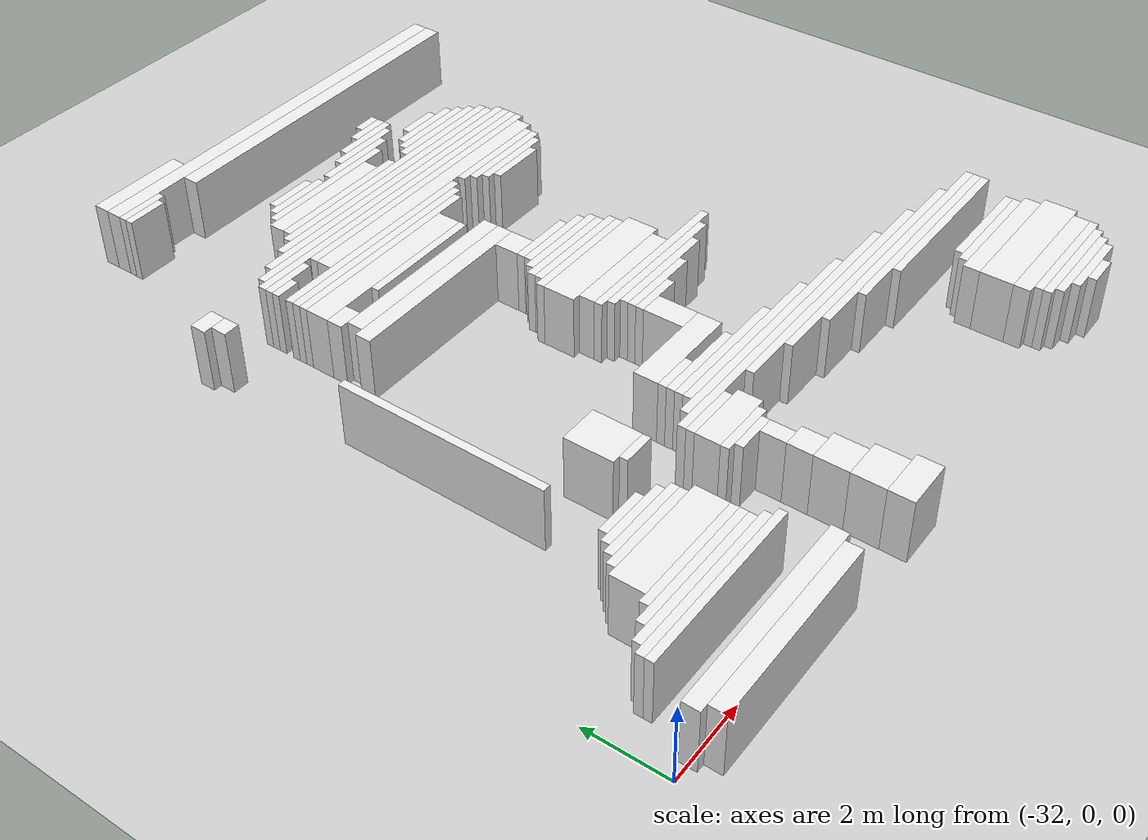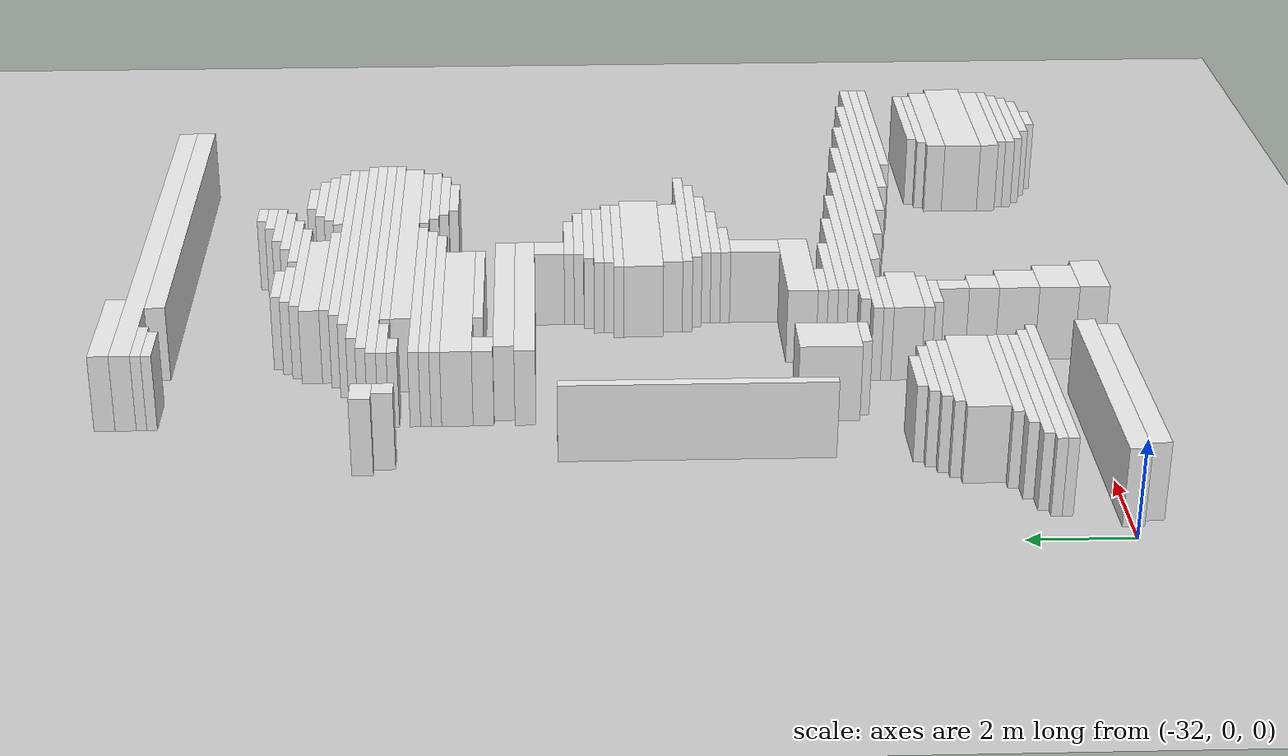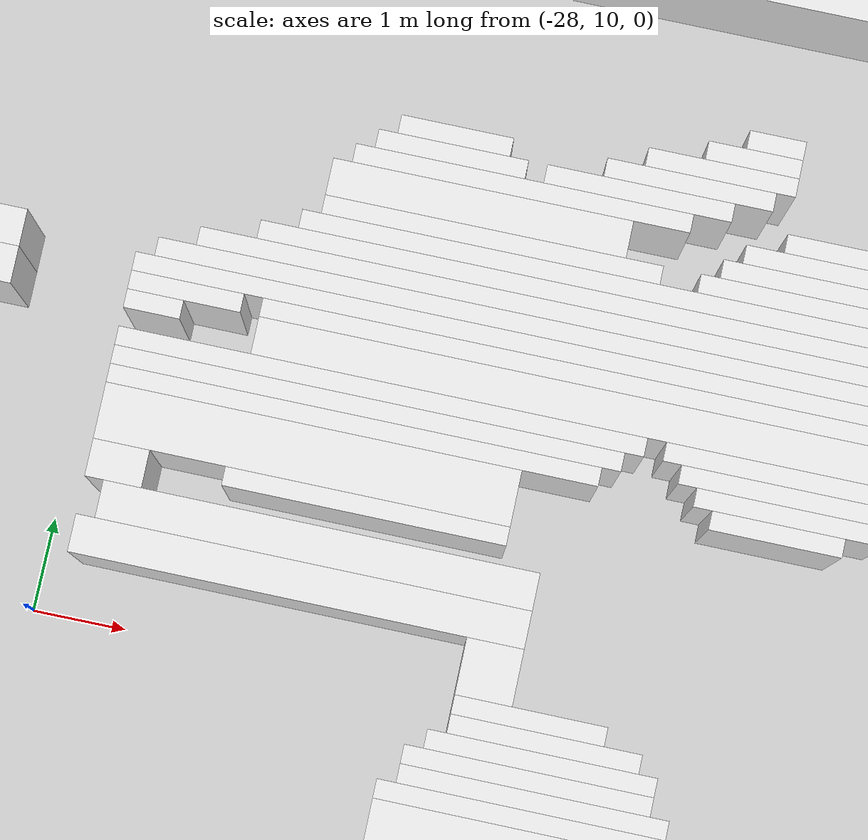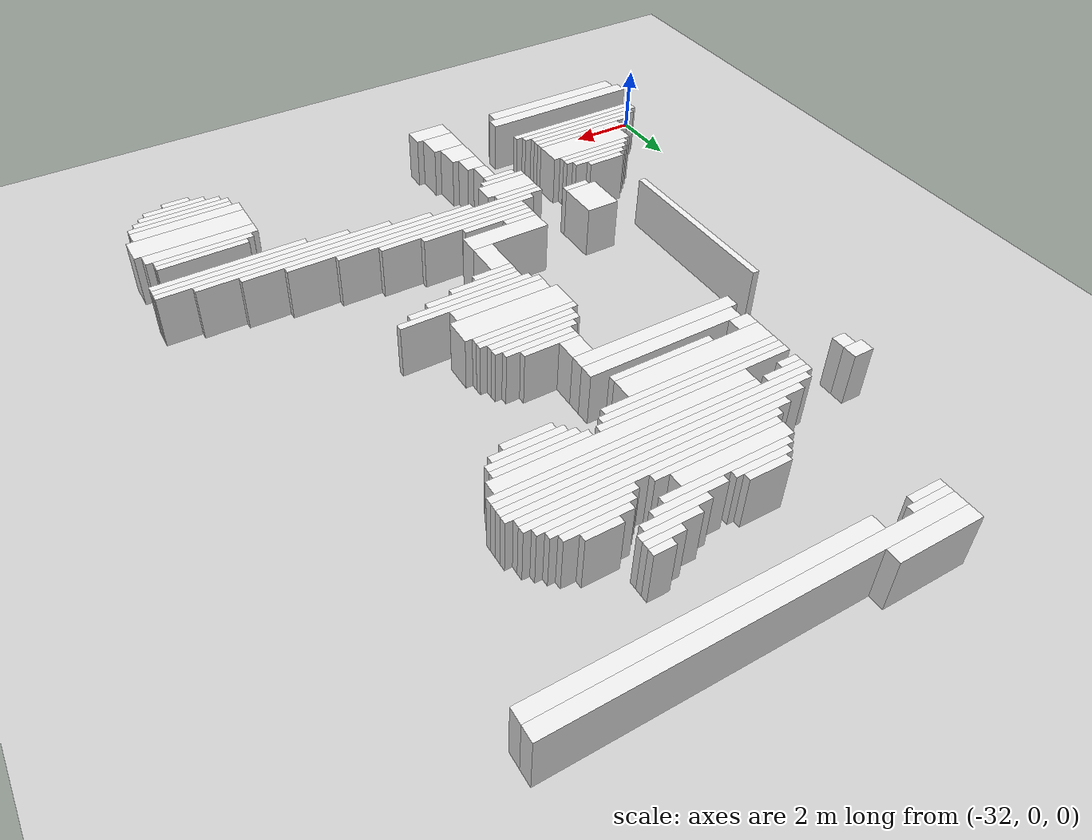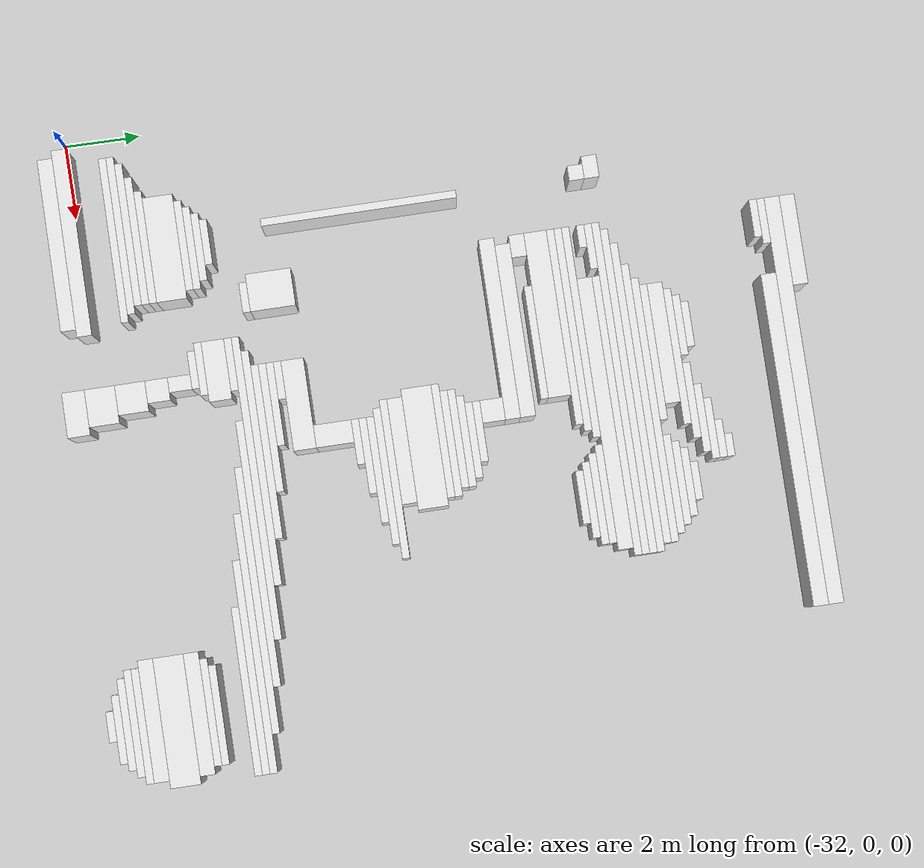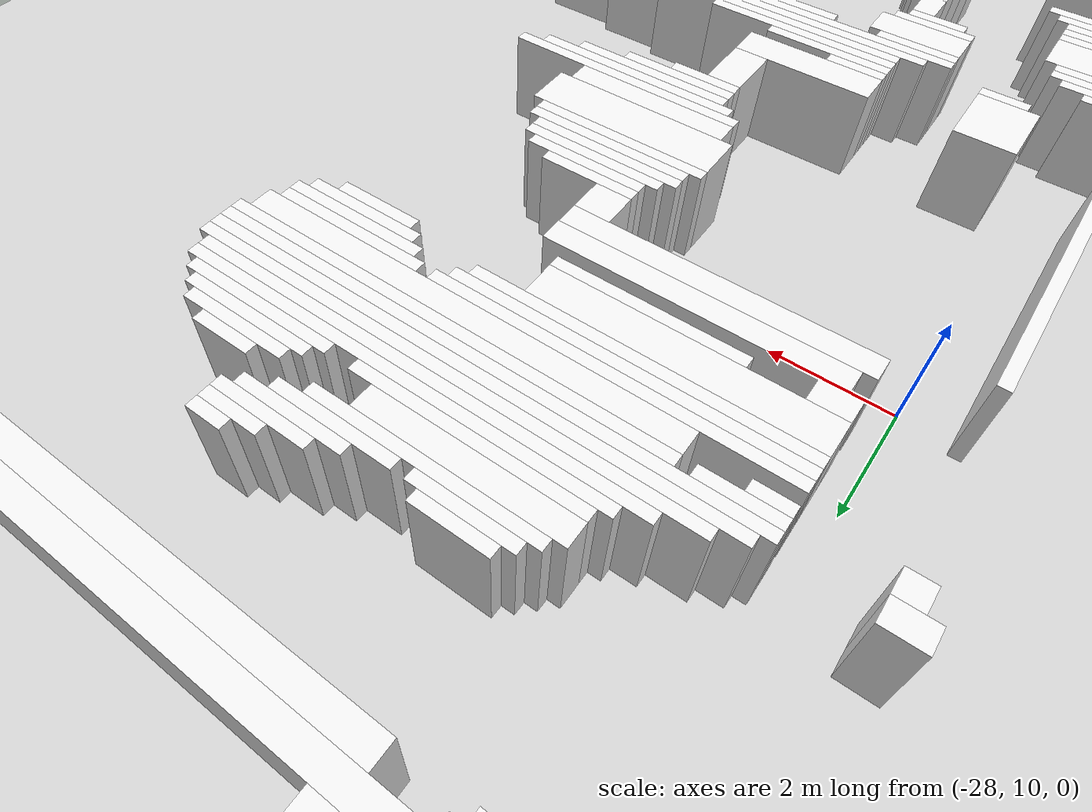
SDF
<sdf version="1.7">
 <world name="default">
  <model name="ground_plane">
   <static>1</static>
   <link name="link">
    <collision name="collision">
     <geometry><plane><normal>0 0 1</normal><size>120 120</size></plane></geometry>
    </collision>
    <visual name="visual">
     <geometry><plane><normal>0 0 1</normal><size>120 120</size></plane></geometry>
     <material>
      <script><uri>file://media/materials/scripts/gazebo.material</uri><name>Gazebo/Grey</name></script>
     </material>
    </visual>
   </link>
  </model>
  <model name="random_complex_01_model">
   <static>1</static>
   <link name="obs_1021">
    <pose>-26.4000 18.8000 0.8000 0 0 0</pose>
    <collision name="obs_1021_col"><geometry><box><size>2.4000 0.4000 1.6000</size></box></geometry></collision>
    <visual name="obs_1021_vis">
     <geometry><box><size>2.4000 0.4000 1.6000</size></box></geometry>
     <material>
      <script><uri>file://media/materials/scripts/gazebo.material</uri><name>Gazebo/White</name></script>
     </material>
    </visual>
   </link>
   <link name="obs_1034">
    <pose>-22.2000 18.4000 0.8000 0 0 0</pose>
    <collision name="obs_1034_col"><geometry><box><size>10.8000 0.4000 1.6000</size></box></geometry></collision>
    <visual name="obs_1034_vis">
     <geometry><box><size>10.8000 0.4000 1.6000</size></box></geometry>
     <material>
      <script><uri>file://media/materials/scripts/gazebo.material</uri><name>Gazebo/White</name></script>
     </material>
    </visual>
   </link>
   <link name="obs_1049">
    <pose>-27.0000 18.1000 0.8000 0 0 0</pose>
    <collision name="obs_1049_col"><geometry><box><size>1.2000 0.2000 1.6000</size></box></geometry></collision>
    <visual name="obs_1049_vis">
     <geometry><box><size>1.2000 0.2000 1.6000</size></box></geometry>
     <material>
      <script><uri>file://media/materials/scripts/gazebo.material</uri><name>Gazebo/White</name></script>
     </material>
    </visual>
   </link>
   <link name="obs_1056">
    <pose>-21.2000 18.0000 0.8000 0 0 0</pose>
    <collision name="obs_1056_col"><geometry><box><size>8.8000 0.4000 1.6000</size></box></geometry></collision>
    <visual name="obs_1056_vis">
     <geometry><box><size>8.8000 0.4000 1.6000</size></box></geometry>
     <material>
      <script><uri>file://media/materials/scripts/gazebo.material</uri><name>Gazebo/White</name></script>
     </material>
    </visual>
   </link>
   <link name="obs_1062">
    <pose>-27.1000 17.9000 0.8000 0 0 0</pose>
    <collision name="obs_1062_col"><geometry><box><size>1.0000 0.2000 1.6000</size></box></geometry></collision>
    <visual name="obs_1062_vis">
     <geometry><box><size>1.0000 0.2000 1.6000</size></box></geometry>
     <material>
      <script><uri>file://media/materials/scripts/gazebo.material</uri><name>Gazebo/White</name></script>
     </material>
    </visual>
   </link>
   <link name="obs_1123">
    <pose>-21.3000 16.3000 0.8000 0 0 0</pose>
    <collision name="obs_1123_col"><geometry><box><size>0.6000 0.2000 1.6000</size></box></geometry></collision>
    <visual name="obs_1123_vis">
     <geometry><box><size>0.6000 0.2000 1.6000</size></box></geometry>
     <material>
      <script><uri>file://media/materials/scripts/gazebo.material</uri><name>Gazebo/White</name></script>
     </material>
    </visual>
   </link>
   <link name="obs_1133">
    <pose>-21.5000 16.1000 0.8000 0 0 0</pose>
    <collision name="obs_1133_col"><geometry><box><size>1.0000 0.2000 1.6000</size></box></geometry></collision>
    <visual name="obs_1133_vis">
     <geometry><box><size>1.0000 0.2000 1.6000</size></box></geometry>
     <material>
      <script><uri>file://media/materials/scripts/gazebo.material</uri><name>Gazebo/White</name></script>
     </material>
    </visual>
   </link>
   <link name="obs_1143">
    <pose>-21.8000 15.9000 0.8000 0 0 0</pose>
    <collision name="obs_1143_col"><geometry><box><size>1.6000 0.2000 1.6000</size></box></geometry></collision>
    <visual name="obs_1143_vis">
     <geometry><box><size>1.6000 0.2000 1.6000</size></box></geometry>
     <material>
      <script><uri>file://media/materials/scripts/gazebo.material</uri><name>Gazebo/White</name></script>
     </material>
    </visual>
   </link>
   <link name="obs_1151">
    <pose>-24.6000 15.7000 0.8000 0 0 0</pose>
    <collision name="obs_1151_col"><geometry><box><size>1.2000 0.2000 1.6000</size></box></geometry></collision>
    <visual name="obs_1151_vis">
     <geometry><box><size>1.2000 0.2000 1.6000</size></box></geometry>
     <material>
      <script><uri>file://media/materials/scripts/gazebo.material</uri><name>Gazebo/White</name></script>
     </material>
    </visual>
   </link>
   <link name="obs_1152">
    <pose>-22.1000 15.7000 0.8000 0 0 0</pose>
    <collision name="obs_1152_col"><geometry><box><size>1.8000 0.2000 1.6000</size></box></geometry></collision>
    <visual name="obs_1152_vis">
     <geometry><box><size>1.8000 0.2000 1.6000</size></box></geometry>
     <material>
      <script><uri>file://media/materials/scripts/gazebo.material</uri><name>Gazebo/White</name></script>
     </material>
    </visual>
   </link>
   <link name="obs_1159">
    <pose>-24.6000 15.5000 0.8000 0 0 0</pose>
    <collision name="obs_1159_col"><geometry><box><size>1.6000 0.2000 1.6000</size></box></geometry></collision>
    <visual name="obs_1159_vis">
     <geometry><box><size>1.6000 0.2000 1.6000</size></box></geometry>
     <material>
      <script><uri>file://media/materials/scripts/gazebo.material</uri><name>Gazebo/White</name></script>
     </material>
    </visual>
   </link>
   <link name="obs_1160">
    <pose>-22.6000 15.5000 0.8000 0 0 0</pose>
    <collision name="obs_1160_col"><geometry><box><size>2.0000 0.2000 1.6000</size></box></geometry></collision>
    <visual name="obs_1160_vis">
     <geometry><box><size>2.0000 0.2000 1.6000</size></box></geometry>
     <material>
      <script><uri>file://media/materials/scripts/gazebo.material</uri><name>Gazebo/White</name></script>
     </material>
    </visual>
   </link>
   <link name="obs_1170">
    <pose>-23.8000 15.3000 0.8000 0 0 0</pose>
    <collision name="obs_1170_col"><geometry><box><size>3.6000 0.2000 1.6000</size></box></geometry></collision>
    <visual name="obs_1170_vis">
     <geometry><box><size>3.6000 0.2000 1.6000</size></box></geometry>
     <material>
      <script><uri>file://media/materials/scripts/gazebo.material</uri><name>Gazebo/White</name></script>
     </material>
    </visual>
   </link>
   <link name="obs_1171">
    <pose>-20.5000 15.3000 0.8000 0 0 0</pose>
    <collision name="obs_1171_col"><geometry><box><size>1.0000 0.2000 1.6000</size></box></geometry></collision>
    <visual name="obs_1171_vis">
     <geometry><box><size>1.0000 0.2000 1.6000</size></box></geometry>
     <material>
      <script><uri>file://media/materials/scripts/gazebo.material</uri><name>Gazebo/White</name></script>
     </material>
    </visual>
   </link>
   <link name="obs_1178">
    <pose>-20.5000 15.1000 0.8000 0 0 0</pose>
    <collision name="obs_1178_col"><geometry><box><size>1.8000 0.2000 1.6000</size></box></geometry></collision>
    <visual name="obs_1178_vis">
     <geometry><box><size>1.8000 0.2000 1.6000</size></box></geometry>
     <material>
      <script><uri>file://media/materials/scripts/gazebo.material</uri><name>Gazebo/White</name></script>
     </material>
    </visual>
   </link>
   <link name="obs_1183">
    <pose>-24.2000 15.0000 0.8000 0 0 0</pose>
    <collision name="obs_1183_col"><geometry><box><size>3.2000 0.4000 1.6000</size></box></geometry></collision>
    <visual name="obs_1183_vis">
     <geometry><box><size>3.2000 0.4000 1.6000</size></box></geometry>
     <material>
      <script><uri>file://media/materials/scripts/gazebo.material</uri><name>Gazebo/White</name></script>
     </material>
    </visual>
   </link>
   <link name="obs_1186">
    <pose>-20.5000 14.9000 0.8000 0 0 0</pose>
    <collision name="obs_1186_col"><geometry><box><size>2.2000 0.2000 1.6000</size></box></geometry></collision>
    <visual name="obs_1186_vis">
     <geometry><box><size>2.2000 0.2000 1.6000</size></box></geometry>
     <material>
      <script><uri>file://media/materials/scripts/gazebo.material</uri><name>Gazebo/White</name></script>
     </material>
    </visual>
   </link>
   <link name="obs_1192">
    <pose>-24.0000 14.7000 0.8000 0 0 0</pose>
    <collision name="obs_1192_col"><geometry><box><size>3.6000 0.2000 1.6000</size></box></geometry></collision>
    <visual name="obs_1192_vis">
     <geometry><box><size>3.6000 0.2000 1.6000</size></box></geometry>
     <material>
      <script><uri>file://media/materials/scripts/gazebo.material</uri><name>Gazebo/White</name></script>
     </material>
    </visual>
   </link>
   <link name="obs_1193">
    <pose>-20.5000 14.7000 0.8000 0 0 0</pose>
    <collision name="obs_1193_col"><geometry><box><size>2.6000 0.2000 1.6000</size></box></geometry></collision>
    <visual name="obs_1193_vis">
     <geometry><box><size>2.6000 0.2000 1.6000</size></box></geometry>
     <material>
      <script><uri>file://media/materials/scripts/gazebo.material</uri><name>Gazebo/White</name></script>
     </material>
    </visual>
   </link>
   <link name="obs_1201">
    <pose>-22.5000 14.5000 0.8000 0 0 0</pose>
    <collision name="obs_1201_col"><geometry><box><size>7.0000 0.2000 1.6000</size></box></geometry></collision>
    <visual name="obs_1201_vis">
     <geometry><box><size>7.0000 0.2000 1.6000</size></box></geometry>
     <material>
      <script><uri>file://media/materials/scripts/gazebo.material</uri><name>Gazebo/White</name></script>
     </material>
    </visual>
   </link>
   <link name="obs_1208">
    <pose>-22.7000 14.3000 0.8000 0 0 0</pose>
    <collision name="obs_1208_col"><geometry><box><size>7.4000 0.2000 1.6000</size></box></geometry></collision>
    <visual name="obs_1208_vis">
     <geometry><box><size>7.4000 0.2000 1.6000</size></box></geometry>
     <material>
      <script><uri>file://media/materials/scripts/gazebo.material</uri><name>Gazebo/White</name></script>
     </material>
    </visual>
   </link>
   <link name="obs_1216">
    <pose>-22.9000 14.1000 0.8000 0 0 0</pose>
    <collision name="obs_1216_col"><geometry><box><size>8.2000 0.2000 1.6000</size></box></geometry></collision>
    <visual name="obs_1216_vis">
     <geometry><box><size>8.2000 0.2000 1.6000</size></box></geometry>
     <material>
      <script><uri>file://media/materials/scripts/gazebo.material</uri><name>Gazebo/White</name></script>
     </material>
    </visual>
   </link>
   <link name="obs_1222">
    <pose>-23.1000 13.9000 0.8000 0 0 0</pose>
    <collision name="obs_1222_col"><geometry><box><size>8.6000 0.2000 1.6000</size></box></geometry></collision>
    <visual name="obs_1222_vis">
     <geometry><box><size>8.6000 0.2000 1.6000</size></box></geometry>
     <material>
      <script><uri>file://media/materials/scripts/gazebo.material</uri><name>Gazebo/White</name></script>
     </material>
    </visual>
   </link>
   <link name="obs_1228">
    <pose>-29.1000 13.8000 0.8000 0 0 0</pose>
    <collision name="obs_1228_col"><geometry><box><size>0.6000 0.4000 1.6000</size></box></geometry></collision>
    <visual name="obs_1228_vis">
     <geometry><box><size>0.6000 0.4000 1.6000</size></box></geometry>
     <material>
      <script><uri>file://media/materials/scripts/gazebo.material</uri><name>Gazebo/White</name></script>
     </material>
    </visual>
   </link>
   <link name="obs_1229">
    <pose>-23.2000 13.7000 0.8000 0 0 0</pose>
    <collision name="obs_1229_col"><geometry><box><size>8.8000 0.2000 1.6000</size></box></geometry></collision>
    <visual name="obs_1229_vis">
     <geometry><box><size>8.8000 0.2000 1.6000</size></box></geometry>
     <material>
      <script><uri>file://media/materials/scripts/gazebo.material</uri><name>Gazebo/White</name></script>
     </material>
    </visual>
   </link>
   <link name="obs_1238">
    <pose>-27.0000 13.5000 0.8000 0 0 0</pose>
    <collision name="obs_1238_col"><geometry><box><size>1.2000 0.2000 1.6000</size></box></geometry></collision>
    <visual name="obs_1238_vis">
     <geometry><box><size>1.2000 0.2000 1.6000</size></box></geometry>
     <material>
      <script><uri>file://media/materials/scripts/gazebo.material</uri><name>Gazebo/White</name></script>
     </material>
    </visual>
   </link>
   <link name="obs_1239">
    <pose>-22.5000 13.5000 0.8000 0 0 0</pose>
    <collision name="obs_1239_col"><geometry><box><size>7.4000 0.2000 1.6000</size></box></geometry></collision>
    <visual name="obs_1239_vis">
     <geometry><box><size>7.4000 0.2000 1.6000</size></box></geometry>
     <material>
      <script><uri>file://media/materials/scripts/gazebo.material</uri><name>Gazebo/White</name></script>
     </material>
    </visual>
   </link>
   <link name="obs_1249">
    <pose>-29.0000 13.4000 0.8000 0 0 0</pose>
    <collision name="obs_1249_col"><geometry><box><size>0.4000 0.4000 1.6000</size></box></geometry></collision>
    <visual name="obs_1249_vis">
     <geometry><box><size>0.4000 0.4000 1.6000</size></box></geometry>
     <material>
      <script><uri>file://media/materials/scripts/gazebo.material</uri><name>Gazebo/White</name></script>
     </material>
    </visual>
   </link>
   <link name="obs_1251">
    <pose>-27.3000 13.3000 0.8000 0 0 0</pose>
    <collision name="obs_1251_col"><geometry><box><size>0.6000 0.2000 1.6000</size></box></geometry></collision>
    <visual name="obs_1251_vis">
     <geometry><box><size>0.6000 0.2000 1.6000</size></box></geometry>
     <material>
      <script><uri>file://media/materials/scripts/gazebo.material</uri><name>Gazebo/White</name></script>
     </material>
    </visual>
   </link>
   <link name="obs_1257">
    <pose>-22.6000 13.2000 0.8000 0 0 0</pose>
    <collision name="obs_1257_col"><geometry><box><size>7.2000 0.4000 1.6000</size></box></geometry></collision>
    <visual name="obs_1257_vis">
     <geometry><box><size>7.2000 0.4000 1.6000</size></box></geometry>
     <material>
      <script><uri>file://media/materials/scripts/gazebo.material</uri><name>Gazebo/White</name></script>
     </material>
    </visual>
   </link>
   <link name="obs_1265">
    <pose>-24.8000 12.9000 0.8000 0 0 0</pose>
    <collision name="obs_1265_col"><geometry><box><size>5.6000 0.2000 1.6000</size></box></geometry></collision>
    <visual name="obs_1265_vis">
     <geometry><box><size>5.6000 0.2000 1.6000</size></box></geometry>
     <material>
      <script><uri>file://media/materials/scripts/gazebo.material</uri><name>Gazebo/White</name></script>
     </material>
    </visual>
   </link>
   <link name="obs_1266">
    <pose>-20.5000 12.9000 0.8000 0 0 0</pose>
    <collision name="obs_1266_col"><geometry><box><size>2.6000 0.2000 1.6000</size></box></geometry></collision>
    <visual name="obs_1266_vis">
     <geometry><box><size>2.6000 0.2000 1.6000</size></box></geometry>
     <material>
      <script><uri>file://media/materials/scripts/gazebo.material</uri><name>Gazebo/White</name></script>
     </material>
    </visual>
   </link>
   <link name="obs_1274">
    <pose>-24.9000 12.7000 0.8000 0 0 0</pose>
    <collision name="obs_1274_col"><geometry><box><size>5.4000 0.2000 1.6000</size></box></geometry></collision>
    <visual name="obs_1274_vis">
     <geometry><box><size>5.4000 0.2000 1.6000</size></box></geometry>
     <material>
      <script><uri>file://media/materials/scripts/gazebo.material</uri><name>Gazebo/White</name></script>
     </material>
    </visual>
   </link>
   <link name="obs_1275">
    <pose>-20.4000 12.7000 0.8000 0 0 0</pose>
    <collision name="obs_1275_col"><geometry><box><size>2.4000 0.2000 1.6000</size></box></geometry></collision>
    <visual name="obs_1275_vis">
     <geometry><box><size>2.4000 0.2000 1.6000</size></box></geometry>
     <material>
      <script><uri>file://media/materials/scripts/gazebo.material</uri><name>Gazebo/White</name></script>
     </material>
    </visual>
   </link>
   <link name="obs_1285">
    <pose>-25.0000 12.5000 0.8000 0 0 0</pose>
    <collision name="obs_1285_col"><geometry><box><size>5.2000 0.2000 1.6000</size></box></geometry></collision>
    <visual name="obs_1285_vis">
     <geometry><box><size>5.2000 0.2000 1.6000</size></box></geometry>
     <material>
      <script><uri>file://media/materials/scripts/gazebo.material</uri><name>Gazebo/White</name></script>
     </material>
    </visual>
   </link>
   <link name="obs_1286">
    <pose>-20.4000 12.5000 0.8000 0 0 0</pose>
    <collision name="obs_1286_col"><geometry><box><size>2.0000 0.2000 1.6000</size></box></geometry></collision>
    <visual name="obs_1286_vis">
     <geometry><box><size>2.0000 0.2000 1.6000</size></box></geometry>
     <material>
      <script><uri>file://media/materials/scripts/gazebo.material</uri><name>Gazebo/White</name></script>
     </material>
    </visual>
   </link>
   <link name="obs_1292">
    <pose>-20.5000 12.3000 0.8000 0 0 0</pose>
    <collision name="obs_1292_col"><geometry><box><size>1.4000 0.2000 1.6000</size></box></geometry></collision>
    <visual name="obs_1292_vis">
     <geometry><box><size>1.4000 0.2000 1.6000</size></box></geometry>
     <material>
      <script><uri>file://media/materials/scripts/gazebo.material</uri><name>Gazebo/White</name></script>
     </material>
    </visual>
   </link>
   <link name="obs_1306">
    <pose>-25.4000 12.1000 0.8000 0 0 0</pose>
    <collision name="obs_1306_col"><geometry><box><size>4.4000 0.6000 1.6000</size></box></geometry></collision>
    <visual name="obs_1306_vis">
     <geometry><box><size>4.4000 0.6000 1.6000</size></box></geometry>
     <material>
      <script><uri>file://media/materials/scripts/gazebo.material</uri><name>Gazebo/White</name></script>
     </material>
    </visual>
   </link>
   <link name="obs_1317">
    <pose>-24.7000 11.7000 0.8000 0 0 0</pose>
    <collision name="obs_1317_col"><geometry><box><size>3.0000 0.2000 1.6000</size></box></geometry></collision>
    <visual name="obs_1317_vis">
     <geometry><box><size>3.0000 0.2000 1.6000</size></box></geometry>
     <material>
      <script><uri>file://media/materials/scripts/gazebo.material</uri><name>Gazebo/White</name></script>
     </material>
    </visual>
   </link>
   <link name="obs_1322">
    <pose>-27.3000 11.6000 0.8000 0 0 0</pose>
    <collision name="obs_1322_col"><geometry><box><size>0.6000 0.4000 1.6000</size></box></geometry></collision>
    <visual name="obs_1322_vis">
     <geometry><box><size>0.6000 0.4000 1.6000</size></box></geometry>
     <material>
      <script><uri>file://media/materials/scripts/gazebo.material</uri><name>Gazebo/White</name></script>
     </material>
    </visual>
   </link>
   <link name="obs_1334">
    <pose>-25.1000 11.2000 0.8000 0 0 0</pose>
    <collision name="obs_1334_col"><geometry><box><size>4.6000 0.4000 1.6000</size></box></geometry></collision>
    <visual name="obs_1334_vis">
     <geometry><box><size>4.6000 0.4000 1.6000</size></box></geometry>
     <material>
      <script><uri>file://media/materials/scripts/gazebo.material</uri><name>Gazebo/White</name></script>
     </material>
    </visual>
   </link>
   <link name="obs_1346">
    <pose>-25.2000 10.8000 0.8000 0 0 0</pose>
    <collision name="obs_1346_col"><geometry><box><size>4.8000 0.4000 1.6000</size></box></geometry></collision>
    <visual name="obs_1346_vis">
     <geometry><box><size>4.8000 0.4000 1.6000</size></box></geometry>
     <material>
      <script><uri>file://media/materials/scripts/gazebo.material</uri><name>Gazebo/White</name></script>
     </material>
    </visual>
   </link>
   <link name="obs_1364">
    <pose>-23.1000 10.3000 0.8000 0 0 0</pose>
    <collision name="obs_1364_col"><geometry><box><size>0.6000 0.6000 1.6000</size></box></geometry></collision>
    <visual name="obs_1364_vis">
     <geometry><box><size>0.6000 0.6000 1.6000</size></box></geometry>
     <material>
      <script><uri>file://media/materials/scripts/gazebo.material</uri><name>Gazebo/White</name></script>
     </material>
    </visual>
   </link>
   <link name="obs_1374">
    <pose>-22.6000 9.9000 0.8000 0 0 0</pose>
    <collision name="obs_1374_col"><geometry><box><size>1.6000 0.2000 1.6000</size></box></geometry></collision>
    <visual name="obs_1374_vis">
     <geometry><box><size>1.6000 0.2000 1.6000</size></box></geometry>
     <material>
      <script><uri>file://media/materials/scripts/gazebo.material</uri><name>Gazebo/White</name></script>
     </material>
    </visual>
   </link>
   <link name="obs_1381">
    <pose>-22.4000 9.7000 0.8000 0 0 0</pose>
    <collision name="obs_1381_col"><geometry><box><size>2.0000 0.2000 1.6000</size></box></geometry></collision>
    <visual name="obs_1381_vis">
     <geometry><box><size>2.0000 0.2000 1.6000</size></box></geometry>
     <material>
      <script><uri>file://media/materials/scripts/gazebo.material</uri><name>Gazebo/White</name></script>
     </material>
    </visual>
   </link>
   <link name="obs_1391">
    <pose>-22.4000 9.5000 0.8000 0 0 0</pose>
    <collision name="obs_1391_col"><geometry><box><size>2.4000 0.2000 1.6000</size></box></geometry></collision>
    <visual name="obs_1391_vis">
     <geometry><box><size>2.4000 0.2000 1.6000</size></box></geometry>
     <material>
      <script><uri>file://media/materials/scripts/gazebo.material</uri><name>Gazebo/White</name></script>
     </material>
    </visual>
   </link>
   <link name="obs_1396">
    <pose>-22.5000 9.3000 0.8000 0 0 0</pose>
    <collision name="obs_1396_col"><geometry><box><size>2.6000 0.2000 1.6000</size></box></geometry></collision>
    <visual name="obs_1396_vis">
     <geometry><box><size>2.6000 0.2000 1.6000</size></box></geometry>
     <material>
      <script><uri>file://media/materials/scripts/gazebo.material</uri><name>Gazebo/White</name></script>
     </material>
    </visual>
   </link>
   <link name="obs_1404">
    <pose>-22.4000 9.1000 0.8000 0 0 0</pose>
    <collision name="obs_1404_col"><geometry><box><size>2.8000 0.2000 1.6000</size></box></geometry></collision>
    <visual name="obs_1404_vis">
     <geometry><box><size>2.8000 0.2000 1.6000</size></box></geometry>
     <material>
      <script><uri>file://media/materials/scripts/gazebo.material</uri><name>Gazebo/White</name></script>
     </material>
    </visual>
   </link>
   <link name="obs_1415">
    <pose>-22.5000 8.9000 0.8000 0 0 0</pose>
    <collision name="obs_1415_col"><geometry><box><size>3.0000 0.2000 1.6000</size></box></geometry></collision>
    <visual name="obs_1415_vis">
     <geometry><box><size>3.0000 0.2000 1.6000</size></box></geometry>
     <material>
      <script><uri>file://media/materials/scripts/gazebo.material</uri><name>Gazebo/White</name></script>
     </material>
    </visual>
   </link>
   <link name="obs_1443">
    <pose>-22.4000 8.4000 0.8000 0 0 0</pose>
    <collision name="obs_1443_col"><geometry><box><size>3.2000 0.8000 1.6000</size></box></geometry></collision>
    <visual name="obs_1443_vis">
     <geometry><box><size>3.2000 0.8000 1.6000</size></box></geometry>
     <material>
      <script><uri>file://media/materials/scripts/gazebo.material</uri><name>Gazebo/White</name></script>
     </material>
    </visual>
   </link>
   <link name="obs_1459">
    <pose>-22.4000 7.8000 0.8000 0 0 0</pose>
    <collision name="obs_1459_col"><geometry><box><size>2.8000 0.4000 1.6000</size></box></geometry></collision>
    <visual name="obs_1459_vis">
     <geometry><box><size>2.8000 0.4000 1.6000</size></box></geometry>
     <material>
      <script><uri>file://media/materials/scripts/gazebo.material</uri><name>Gazebo/White</name></script>
     </material>
    </visual>
   </link>
   <link name="obs_1471">
    <pose>-21.7000 7.5000 0.8000 0 0 0</pose>
    <collision name="obs_1471_col"><geometry><box><size>4.2000 0.2000 1.6000</size></box></geometry></collision>
    <visual name="obs_1471_vis">
     <geometry><box><size>4.2000 0.2000 1.6000</size></box></geometry>
     <material>
      <script><uri>file://media/materials/scripts/gazebo.material</uri><name>Gazebo/White</name></script>
     </material>
    </visual>
   </link>
   <link name="obs_1481">
    <pose>-21.8000 7.3000 0.8000 0 0 0</pose>
    <collision name="obs_1481_col"><geometry><box><size>3.6000 0.2000 1.6000</size></box></geometry></collision>
    <visual name="obs_1481_vis">
     <geometry><box><size>3.6000 0.2000 1.6000</size></box></geometry>
     <material>
      <script><uri>file://media/materials/scripts/gazebo.material</uri><name>Gazebo/White</name></script>
     </material>
    </visual>
   </link>
   <link name="obs_1487">
    <pose>-22.0000 7.1000 0.8000 0 0 0</pose>
    <collision name="obs_1487_col"><geometry><box><size>2.8000 0.2000 1.6000</size></box></geometry></collision>
    <visual name="obs_1487_vis">
     <geometry><box><size>2.8000 0.2000 1.6000</size></box></geometry>
     <material>
      <script><uri>file://media/materials/scripts/gazebo.material</uri><name>Gazebo/White</name></script>
     </material>
    </visual>
   </link>
   <link name="obs_1495">
    <pose>-22.4000 6.9000 0.8000 0 0 0</pose>
    <collision name="obs_1495_col"><geometry><box><size>2.0000 0.2000 1.6000</size></box></geometry></collision>
    <visual name="obs_1495_vis">
     <geometry><box><size>2.0000 0.2000 1.6000</size></box></geometry>
     <material>
      <script><uri>file://media/materials/scripts/gazebo.material</uri><name>Gazebo/White</name></script>
     </material>
    </visual>
   </link>
   <link name="obs_1501">
    <pose>-22.8000 6.7000 0.8000 0 0 0</pose>
    <collision name="obs_1501_col"><geometry><box><size>1.2000 0.2000 1.6000</size></box></geometry></collision>
    <visual name="obs_1501_vis">
     <geometry><box><size>1.2000 0.2000 1.6000</size></box></geometry>
     <material>
      <script><uri>file://media/materials/scripts/gazebo.material</uri><name>Gazebo/White</name></script>
     </material>
    </visual>
   </link>
   <link name="obs_1542">
    <pose>-23.1000 6.1000 0.8000 0 0 0</pose>
    <collision name="obs_1542_col"><geometry><box><size>0.6000 1.0000 1.6000</size></box></geometry></collision>
    <visual name="obs_1542_vis">
     <geometry><box><size>0.6000 1.0000 1.6000</size></box></geometry>
     <material>
      <script><uri>file://media/materials/scripts/gazebo.material</uri><name>Gazebo/White</name></script>
     </material>
    </visual>
   </link>
   <link name="obs_1569">
    <pose>-28.9000 7.6000 0.8000 0 0 0</pose>
    <collision name="obs_1569_col"><geometry><box><size>0.2000 5.2000 1.6000</size></box></geometry></collision>
    <visual name="obs_1569_vis">
     <geometry><box><size>0.2000 5.2000 1.6000</size></box></geometry>
     <material>
      <script><uri>file://media/materials/scripts/gazebo.material</uri><name>Gazebo/White</name></script>
     </material>
    </visual>
   </link>
   <link name="obs_1570">
    <pose>-24.0000 5.3000 0.8000 0 0 0</pose>
    <collision name="obs_1570_col"><geometry><box><size>2.4000 0.6000 1.6000</size></box></geometry></collision>
    <visual name="obs_1570_vis">
     <geometry><box><size>2.4000 0.6000 1.6000</size></box></geometry>
     <material>
      <script><uri>file://media/materials/scripts/gazebo.material</uri><name>Gazebo/White</name></script>
     </material>
    </visual>
   </link>
   <link name="obs_1584">
    <pose>-24.7000 4.9000 0.8000 0 0 0</pose>
    <collision name="obs_1584_col"><geometry><box><size>1.0000 0.2000 1.6000</size></box></geometry></collision>
    <visual name="obs_1584_vis">
     <geometry><box><size>1.0000 0.2000 1.6000</size></box></geometry>
     <material>
      <script><uri>file://media/materials/scripts/gazebo.material</uri><name>Gazebo/White</name></script>
     </material>
    </visual>
   </link>
   <link name="obs_1594">
    <pose>-24.1000 4.7000 0.8000 0 0 0</pose>
    <collision name="obs_1594_col"><geometry><box><size>2.2000 0.2000 1.6000</size></box></geometry></collision>
    <visual name="obs_1594_vis">
     <geometry><box><size>2.2000 0.2000 1.6000</size></box></geometry>
     <material>
      <script><uri>file://media/materials/scripts/gazebo.material</uri><name>Gazebo/White</name></script>
     </material>
    </visual>
   </link>
   <link name="obs_1601">
    <pose>-27.1000 5.0000 0.8000 0 0 0</pose>
    <collision name="obs_1601_col"><geometry><box><size>1.0000 1.2000 1.6000</size></box></geometry></collision>
    <visual name="obs_1601_vis">
     <geometry><box><size>1.0000 1.2000 1.6000</size></box></geometry>
     <material>
      <script><uri>file://media/materials/scripts/gazebo.material</uri><name>Gazebo/White</name></script>
     </material>
    </visual>
   </link>
   <link name="obs_1605">
    <pose>-23.5000 4.5000 0.8000 0 0 0</pose>
    <collision name="obs_1605_col"><geometry><box><size>3.4000 0.2000 1.6000</size></box></geometry></collision>
    <visual name="obs_1605_vis">
     <geometry><box><size>3.4000 0.2000 1.6000</size></box></geometry>
     <material>
      <script><uri>file://media/materials/scripts/gazebo.material</uri><name>Gazebo/White</name></script>
     </material>
    </visual>
   </link>
   <link name="obs_1614">
    <pose>-27.0000 4.3000 0.8000 0 0 0</pose>
    <collision name="obs_1614_col"><geometry><box><size>0.8000 0.2000 1.6000</size></box></geometry></collision>
    <visual name="obs_1614_vis">
     <geometry><box><size>0.8000 0.2000 1.6000</size></box></geometry>
     <material>
      <script><uri>file://media/materials/scripts/gazebo.material</uri><name>Gazebo/White</name></script>
     </material>
    </visual>
   </link>
   <link name="obs_1615">
    <pose>-22.9000 4.3000 0.8000 0 0 0</pose>
    <collision name="obs_1615_col"><geometry><box><size>4.6000 0.2000 1.6000</size></box></geometry></collision>
    <visual name="obs_1615_vis">
     <geometry><box><size>4.6000 0.2000 1.6000</size></box></geometry>
     <material>
      <script><uri>file://media/materials/scripts/gazebo.material</uri><name>Gazebo/White</name></script>
     </material>
    </visual>
   </link>
   <link name="obs_1623">
    <pose>-22.5000 4.1000 0.8000 0 0 0</pose>
    <collision name="obs_1623_col"><geometry><box><size>6.2000 0.2000 1.6000</size></box></geometry></collision>
    <visual name="obs_1623_vis">
     <geometry><box><size>6.2000 0.2000 1.6000</size></box></geometry>
     <material>
      <script><uri>file://media/materials/scripts/gazebo.material</uri><name>Gazebo/White</name></script>
     </material>
    </visual>
   </link>
   <link name="obs_1638">
    <pose>-22.0000 3.9000 0.8000 0 0 0</pose>
    <collision name="obs_1638_col"><geometry><box><size>8.0000 0.2000 1.6000</size></box></geometry></collision>
    <visual name="obs_1638_vis">
     <geometry><box><size>8.0000 0.2000 1.6000</size></box></geometry>
     <material>
      <script><uri>file://media/materials/scripts/gazebo.material</uri><name>Gazebo/White</name></script>
     </material>
    </visual>
   </link>
   <link name="obs_1651">
    <pose>-25.3000 3.7000 0.8000 0 0 0</pose>
    <collision name="obs_1651_col"><geometry><box><size>1.4000 0.2000 1.6000</size></box></geometry></collision>
    <visual name="obs_1651_vis">
     <geometry><box><size>1.4000 0.2000 1.6000</size></box></geometry>
     <material>
      <script><uri>file://media/materials/scripts/gazebo.material</uri><name>Gazebo/White</name></script>
     </material>
    </visual>
   </link>
   <link name="obs_1652">
    <pose>-20.3000 3.7000 0.8000 0 0 0</pose>
    <collision name="obs_1652_col"><geometry><box><size>7.0000 0.2000 1.6000</size></box></geometry></collision>
    <visual name="obs_1652_vis">
     <geometry><box><size>7.0000 0.2000 1.6000</size></box></geometry>
     <material>
      <script><uri>file://media/materials/scripts/gazebo.material</uri><name>Gazebo/White</name></script>
     </material>
    </visual>
   </link>
   <link name="obs_1669">
    <pose>-28.6000 3.5000 0.8000 0 0 0</pose>
    <collision name="obs_1669_col"><geometry><box><size>1.2000 0.2000 1.6000</size></box></geometry></collision>
    <visual name="obs_1669_vis">
     <geometry><box><size>1.2000 0.2000 1.6000</size></box></geometry>
     <material>
      <script><uri>file://media/materials/scripts/gazebo.material</uri><name>Gazebo/White</name></script>
     </material>
    </visual>
   </link>
   <link name="obs_1670">
    <pose>-19.1000 3.5000 0.8000 0 0 0</pose>
    <collision name="obs_1670_col"><geometry><box><size>7.0000 0.2000 1.6000</size></box></geometry></collision>
    <visual name="obs_1670_vis">
     <geometry><box><size>7.0000 0.2000 1.6000</size></box></geometry>
     <material>
      <script><uri>file://media/materials/scripts/gazebo.material</uri><name>Gazebo/White</name></script>
     </material>
    </visual>
   </link>
   <link name="obs_1682">
    <pose>-28.5000 3.3000 0.8000 0 0 0</pose>
    <collision name="obs_1682_col"><geometry><box><size>1.8000 0.2000 1.6000</size></box></geometry></collision>
    <visual name="obs_1682_vis">
     <geometry><box><size>1.8000 0.2000 1.6000</size></box></geometry>
     <material>
      <script><uri>file://media/materials/scripts/gazebo.material</uri><name>Gazebo/White</name></script>
     </material>
    </visual>
   </link>
   <link name="obs_1683">
    <pose>-18.0000 3.3000 0.8000 0 0 0</pose>
    <collision name="obs_1683_col"><geometry><box><size>6.8000 0.2000 1.6000</size></box></geometry></collision>
    <visual name="obs_1683_vis">
     <geometry><box><size>6.8000 0.2000 1.6000</size></box></geometry>
     <material>
      <script><uri>file://media/materials/scripts/gazebo.material</uri><name>Gazebo/White</name></script>
     </material>
    </visual>
   </link>
   <link name="obs_1688">
    <pose>-25.2000 3.3000 0.8000 0 0 0</pose>
    <collision name="obs_1688_col"><geometry><box><size>1.6000 0.6000 1.6000</size></box></geometry></collision>
    <visual name="obs_1688_vis">
     <geometry><box><size>1.6000 0.6000 1.6000</size></box></geometry>
     <material>
      <script><uri>file://media/materials/scripts/gazebo.material</uri><name>Gazebo/White</name></script>
     </material>
    </visual>
   </link>
   <link name="obs_1693">
    <pose>-28.5000 3.1000 0.8000 0 0 0</pose>
    <collision name="obs_1693_col"><geometry><box><size>2.2000 0.2000 1.6000</size></box></geometry></collision>
    <visual name="obs_1693_vis">
     <geometry><box><size>2.2000 0.2000 1.6000</size></box></geometry>
     <material>
      <script><uri>file://media/materials/scripts/gazebo.material</uri><name>Gazebo/White</name></script>
     </material>
    </visual>
   </link>
   <link name="obs_1694">
    <pose>-17.4000 3.1000 0.8000 0 0 0</pose>
    <collision name="obs_1694_col"><geometry><box><size>5.6000 0.2000 1.6000</size></box></geometry></collision>
    <visual name="obs_1694_vis">
     <geometry><box><size>5.6000 0.2000 1.6000</size></box></geometry>
     <material>
      <script><uri>file://media/materials/scripts/gazebo.material</uri><name>Gazebo/White</name></script>
     </material>
    </visual>
   </link>
   <link name="obs_1704">
    <pose>-28.6000 2.9000 0.8000 0 0 0</pose>
    <collision name="obs_1704_col"><geometry><box><size>2.4000 0.2000 1.6000</size></box></geometry></collision>
    <visual name="obs_1704_vis">
     <geometry><box><size>2.4000 0.2000 1.6000</size></box></geometry>
     <material>
      <script><uri>file://media/materials/scripts/gazebo.material</uri><name>Gazebo/White</name></script>
     </material>
    </visual>
   </link>
   <link name="obs_1705">
    <pose>-25.3000 2.9000 0.8000 0 0 0</pose>
    <collision name="obs_1705_col"><geometry><box><size>1.4000 0.2000 1.6000</size></box></geometry></collision>
    <visual name="obs_1705_vis">
     <geometry><box><size>1.4000 0.2000 1.6000</size></box></geometry>
     <material>
      <script><uri>file://media/materials/scripts/gazebo.material</uri><name>Gazebo/White</name></script>
     </material>
    </visual>
   </link>
   <link name="obs_1706">
    <pose>-16.8000 2.9000 0.8000 0 0 0</pose>
    <collision name="obs_1706_col"><geometry><box><size>4.4000 0.2000 1.6000</size></box></geometry></collision>
    <visual name="obs_1706_vis">
     <geometry><box><size>4.4000 0.2000 1.6000</size></box></geometry>
     <material>
      <script><uri>file://media/materials/scripts/gazebo.material</uri><name>Gazebo/White</name></script>
     </material>
    </visual>
   </link>
   <link name="obs_1716">
    <pose>-25.3000 2.7000 0.8000 0 0 0</pose>
    <collision name="obs_1716_col"><geometry><box><size>1.0000 0.2000 1.6000</size></box></geometry></collision>
    <visual name="obs_1716_vis">
     <geometry><box><size>1.0000 0.2000 1.6000</size></box></geometry>
     <material>
      <script><uri>file://media/materials/scripts/gazebo.material</uri><name>Gazebo/White</name></script>
     </material>
    </visual>
   </link>
   <link name="obs_1741">
    <pose>-28.6000 2.4000 0.8000 0 0 0</pose>
    <collision name="obs_1741_col"><geometry><box><size>2.8000 0.8000 1.6000</size></box></geometry></collision>
    <visual name="obs_1741_vis">
     <geometry><box><size>2.8000 0.8000 1.6000</size></box></geometry>
     <material>
      <script><uri>file://media/materials/scripts/gazebo.material</uri><name>Gazebo/White</name></script>
     </material>
    </visual>
   </link>
   <link name="obs_1743">
    <pose>-25.0000 2.3000 0.8000 0 0 0</pose>
    <collision name="obs_1743_col"><geometry><box><size>0.4000 0.6000 1.6000</size></box></geometry></collision>
    <visual name="obs_1743_vis">
     <geometry><box><size>0.4000 0.6000 1.6000</size></box></geometry>
     <material>
      <script><uri>file://media/materials/scripts/gazebo.material</uri><name>Gazebo/White</name></script>
     </material>
    </visual>
   </link>
   <link name="obs_1746">
    <pose>-16.3000 2.1000 0.8000 0 0 0</pose>
    <collision name="obs_1746_col"><geometry><box><size>2.6000 0.2000 1.6000</size></box></geometry></collision>
    <visual name="obs_1746_vis">
     <geometry><box><size>2.6000 0.2000 1.6000</size></box></geometry>
     <material>
      <script><uri>file://media/materials/scripts/gazebo.material</uri><name>Gazebo/White</name></script>
     </material>
    </visual>
   </link>
   <link name="obs_1756">
    <pose>-28.7000 1.9000 0.8000 0 0 0</pose>
    <collision name="obs_1756_col"><geometry><box><size>3.0000 0.2000 1.6000</size></box></geometry></collision>
    <visual name="obs_1756_vis">
     <geometry><box><size>3.0000 0.2000 1.6000</size></box></geometry>
     <material>
      <script><uri>file://media/materials/scripts/gazebo.material</uri><name>Gazebo/White</name></script>
     </material>
    </visual>
   </link>
   <link name="obs_1757">
    <pose>-16.4000 1.9000 0.8000 0 0 0</pose>
    <collision name="obs_1757_col"><geometry><box><size>2.8000 0.2000 1.6000</size></box></geometry></collision>
    <visual name="obs_1757_vis">
     <geometry><box><size>2.8000 0.2000 1.6000</size></box></geometry>
     <material>
      <script><uri>file://media/materials/scripts/gazebo.material</uri><name>Gazebo/White</name></script>
     </material>
    </visual>
   </link>
   <link name="obs_1766">
    <pose>-28.9000 1.7000 0.8000 0 0 0</pose>
    <collision name="obs_1766_col"><geometry><box><size>3.4000 0.2000 1.6000</size></box></geometry></collision>
    <visual name="obs_1766_vis">
     <geometry><box><size>3.4000 0.2000 1.6000</size></box></geometry>
     <material>
      <script><uri>file://media/materials/scripts/gazebo.material</uri><name>Gazebo/White</name></script>
     </material>
    </visual>
   </link>
   <link name="obs_1773">
    <pose>-24.9000 1.7000 0.8000 0 0 0</pose>
    <collision name="obs_1773_col"><geometry><box><size>0.6000 0.6000 1.6000</size></box></geometry></collision>
    <visual name="obs_1773_vis">
     <geometry><box><size>0.6000 0.6000 1.6000</size></box></geometry>
     <material>
      <script><uri>file://media/materials/scripts/gazebo.material</uri><name>Gazebo/White</name></script>
     </material>
    </visual>
   </link>
   <link name="obs_1775">
    <pose>-16.4000 1.6000 0.8000 0 0 0</pose>
    <collision name="obs_1775_col"><geometry><box><size>3.2000 0.4000 1.6000</size></box></geometry></collision>
    <visual name="obs_1775_vis">
     <geometry><box><size>3.2000 0.4000 1.6000</size></box></geometry>
     <material>
      <script><uri>file://media/materials/scripts/gazebo.material</uri><name>Gazebo/White</name></script>
     </material>
    </visual>
   </link>
   <link name="obs_1777">
    <pose>-29.1000 1.5000 0.8000 0 0 0</pose>
    <collision name="obs_1777_col"><geometry><box><size>3.8000 0.2000 1.6000</size></box></geometry></collision>
    <visual name="obs_1777_vis">
     <geometry><box><size>3.8000 0.2000 1.6000</size></box></geometry>
     <material>
      <script><uri>file://media/materials/scripts/gazebo.material</uri><name>Gazebo/White</name></script>
     </material>
    </visual>
   </link>
   <link name="obs_1786">
    <pose>-29.1000 1.3000 0.8000 0 0 0</pose>
    <collision name="obs_1786_col"><geometry><box><size>4.2000 0.2000 1.6000</size></box></geometry></collision>
    <visual name="obs_1786_vis">
     <geometry><box><size>4.2000 0.2000 1.6000</size></box></geometry>
     <material>
      <script><uri>file://media/materials/scripts/gazebo.material</uri><name>Gazebo/White</name></script>
     </material>
    </visual>
   </link>
   <link name="obs_1795">
    <pose>-29.0000 1.1000 0.8000 0 0 0</pose>
    <collision name="obs_1795_col"><geometry><box><size>4.4000 0.2000 1.6000</size></box></geometry></collision>
    <visual name="obs_1795_vis">
     <geometry><box><size>4.4000 0.2000 1.6000</size></box></geometry>
     <material>
      <script><uri>file://media/materials/scripts/gazebo.material</uri><name>Gazebo/White</name></script>
     </material>
    </visual>
   </link>
   <link name="obs_1813">
    <pose>-24.8000 1.0000 0.8000 0 0 0</pose>
    <collision name="obs_1813_col"><geometry><box><size>0.8000 0.8000 1.6000</size></box></geometry></collision>
    <visual name="obs_1813_vis">
     <geometry><box><size>0.8000 0.8000 1.6000</size></box></geometry>
     <material>
      <script><uri>file://media/materials/scripts/gazebo.material</uri><name>Gazebo/White</name></script>
     </material>
    </visual>
   </link>
   <link name="obs_1814">
    <pose>-16.3000 1.0000 0.8000 0 0 0</pose>
    <collision name="obs_1814_col"><geometry><box><size>3.4000 0.8000 1.6000</size></box></geometry></collision>
    <visual name="obs_1814_vis">
     <geometry><box><size>3.4000 0.8000 1.6000</size></box></geometry>
     <material>
      <script><uri>file://media/materials/scripts/gazebo.material</uri><name>Gazebo/White</name></script>
     </material>
    </visual>
   </link>
   <link name="obs_1829">
    <pose>-16.4000 0.4000 0.8000 0 0 0</pose>
    <collision name="obs_1829_col"><geometry><box><size>3.2000 0.4000 1.6000</size></box></geometry></collision>
    <visual name="obs_1829_vis">
     <geometry><box><size>3.2000 0.4000 1.6000</size></box></geometry>
     <material>
      <script><uri>file://media/materials/scripts/gazebo.material</uri><name>Gazebo/White</name></script>
     </material>
    </visual>
   </link>
   <link name="obs_1841">
    <pose>-16.3000 0.1000 0.8000 0 0 0</pose>
    <collision name="obs_1841_col"><geometry><box><size>3.0000 0.2000 1.6000</size></box></geometry></collision>
    <visual name="obs_1841_vis">
     <geometry><box><size>3.0000 0.2000 1.6000</size></box></geometry>
     <material>
      <script><uri>file://media/materials/scripts/gazebo.material</uri><name>Gazebo/White</name></script>
     </material>
    </visual>
   </link>
   <link name="obs_1845">
    <pose>-24.7000 0.2000 0.8000 0 0 0</pose>
    <collision name="obs_1845_col"><geometry><box><size>1.0000 0.8000 1.6000</size></box></geometry></collision>
    <visual name="obs_1845_vis">
     <geometry><box><size>1.0000 0.8000 1.6000</size></box></geometry>
     <material>
      <script><uri>file://media/materials/scripts/gazebo.material</uri><name>Gazebo/White</name></script>
     </material>
    </visual>
   </link>
   <link name="obs_1846">
    <pose>-29.1000 0.0000 0.8000 0 0 0</pose>
    <collision name="obs_1846_col"><geometry><box><size>5.0000 0.4000 1.6000</size></box></geometry></collision>
    <visual name="obs_1846_vis">
     <geometry><box><size>5.0000 0.4000 1.6000</size></box></geometry>
     <material>
      <script><uri>file://media/materials/scripts/gazebo.material</uri><name>Gazebo/White</name></script>
     </material>
    </visual>
   </link>
   <link name="obs_1850">
    <pose>-16.4000 -0.1000 0.8000 0 0 0</pose>
    <collision name="obs_1850_col"><geometry><box><size>2.8000 0.2000 1.6000</size></box></geometry></collision>
    <visual name="obs_1850_vis">
     <geometry><box><size>2.8000 0.2000 1.6000</size></box></geometry>
     <material>
      <script><uri>file://media/materials/scripts/gazebo.material</uri><name>Gazebo/White</name></script>
     </material>
    </visual>
   </link>
   <link name="obs_1856">
    <pose>-16.4000 -0.3000 0.8000 0 0 0</pose>
    <collision name="obs_1856_col"><geometry><box><size>2.4000 0.2000 1.6000</size></box></geometry></collision>
    <visual name="obs_1856_vis">
     <geometry><box><size>2.4000 0.2000 1.6000</size></box></geometry>
     <material>
      <script><uri>file://media/materials/scripts/gazebo.material</uri><name>Gazebo/White</name></script>
     </material>
    </visual>
   </link>
   <link name="obs_1860">
    <pose>-29.1000 -0.4000 0.8000 0 0 0</pose>
    <collision name="obs_1860_col"><geometry><box><size>4.6000 0.4000 1.6000</size></box></geometry></collision>
    <visual name="obs_1860_vis">
     <geometry><box><size>4.6000 0.4000 1.6000</size></box></geometry>
     <material>
      <script><uri>file://media/materials/scripts/gazebo.material</uri><name>Gazebo/White</name></script>
     </material>
    </visual>
   </link>
   <link name="obs_1863">
    <pose>-16.3000 -0.5000 0.8000 0 0 0</pose>
    <collision name="obs_1863_col"><geometry><box><size>1.8000 0.2000 1.6000</size></box></geometry></collision>
    <visual name="obs_1863_vis">
     <geometry><box><size>1.8000 0.2000 1.6000</size></box></geometry>
     <material>
      <script><uri>file://media/materials/scripts/gazebo.material</uri><name>Gazebo/White</name></script>
     </material>
    </visual>
   </link>
   <link name="obs_1869">
    <pose>-24.6000 -0.5000 0.8000 0 0 0</pose>
    <collision name="obs_1869_col"><geometry><box><size>1.2000 0.6000 1.6000</size></box></geometry></collision>
    <visual name="obs_1869_vis">
     <geometry><box><size>1.2000 0.6000 1.6000</size></box></geometry>
     <material>
      <script><uri>file://media/materials/scripts/gazebo.material</uri><name>Gazebo/White</name></script>
     </material>
    </visual>
   </link>
   <link name="obs_1872">
    <pose>-16.4000 -0.7000 0.8000 0 0 0</pose>
    <collision name="obs_1872_col"><geometry><box><size>0.8000 0.2000 1.6000</size></box></geometry></collision>
    <visual name="obs_1872_vis">
     <geometry><box><size>0.8000 0.2000 1.6000</size></box></geometry>
     <material>
      <script><uri>file://media/materials/scripts/gazebo.material</uri><name>Gazebo/White</name></script>
     </material>
    </visual>
   </link>
  </model>
 </world>
</sdf>
